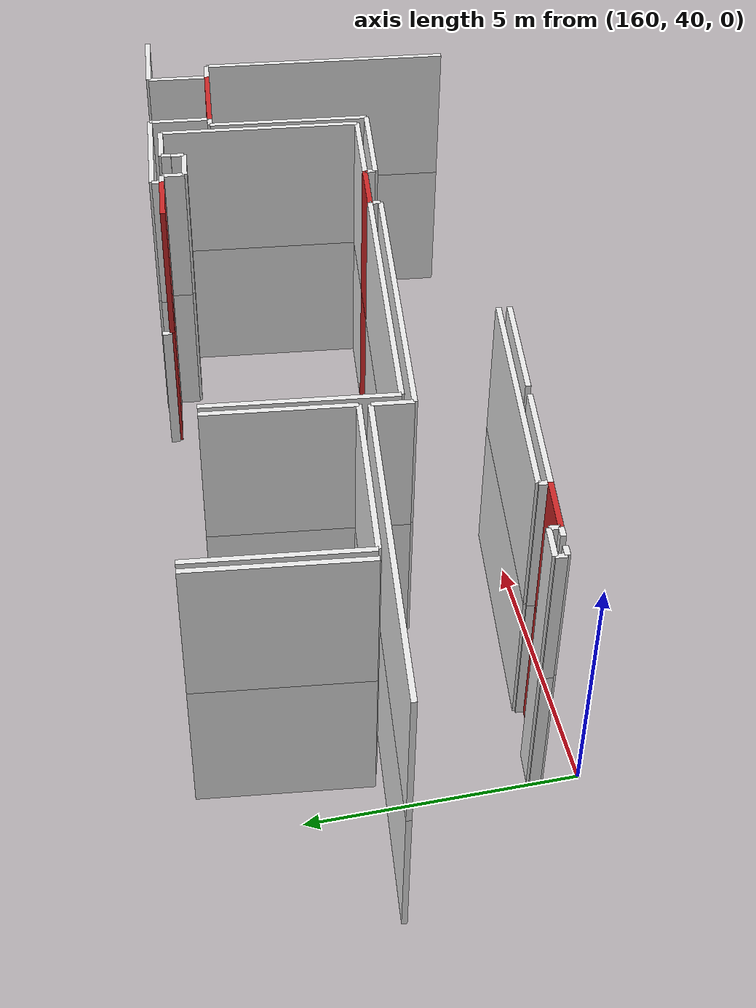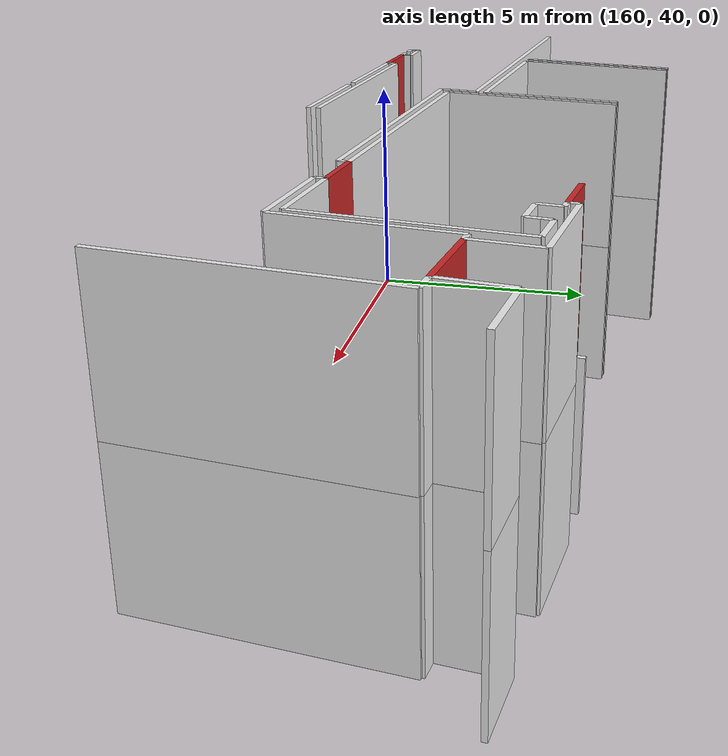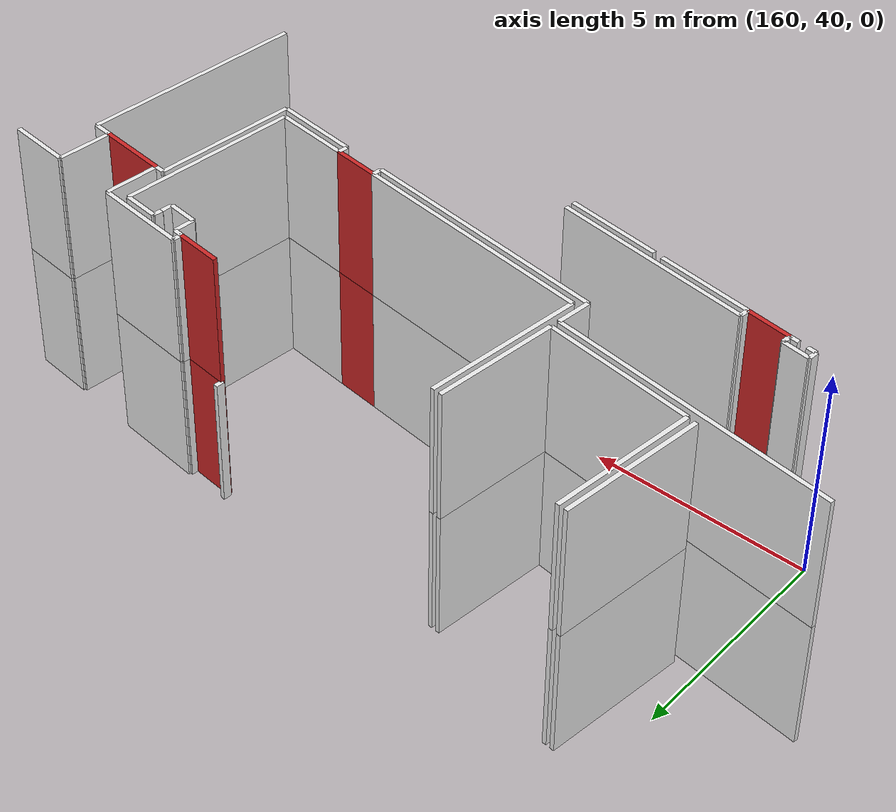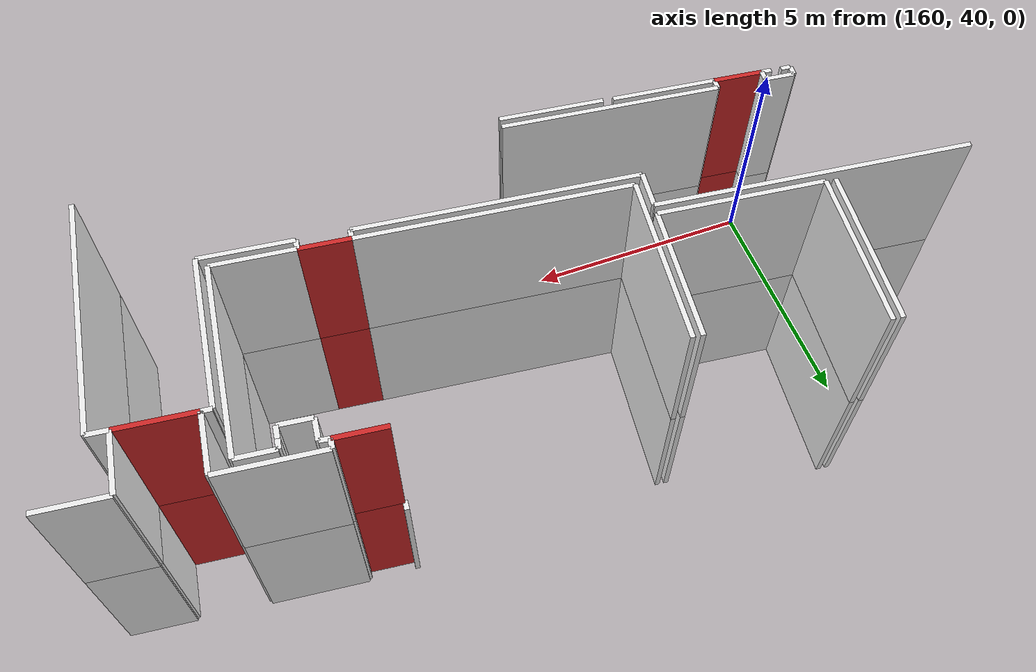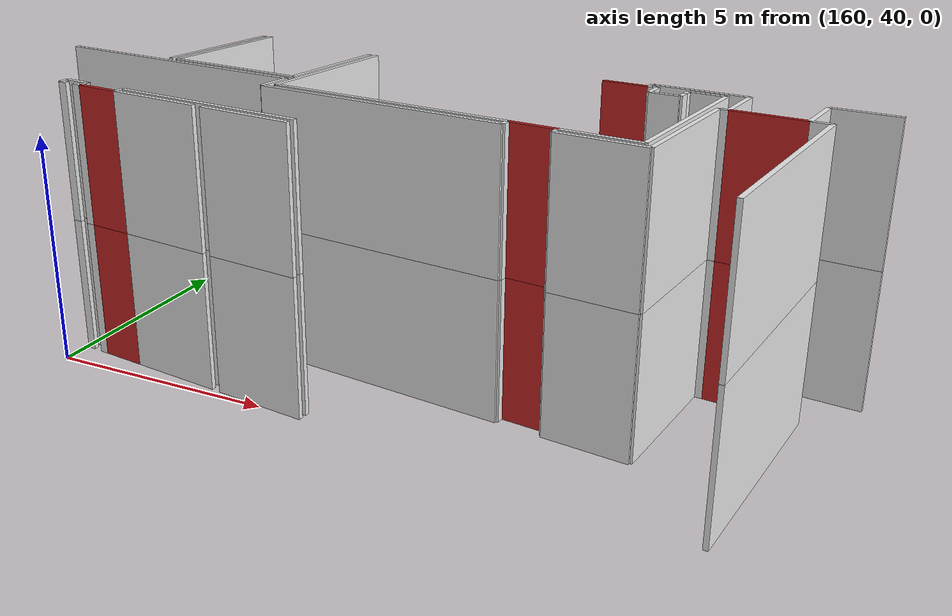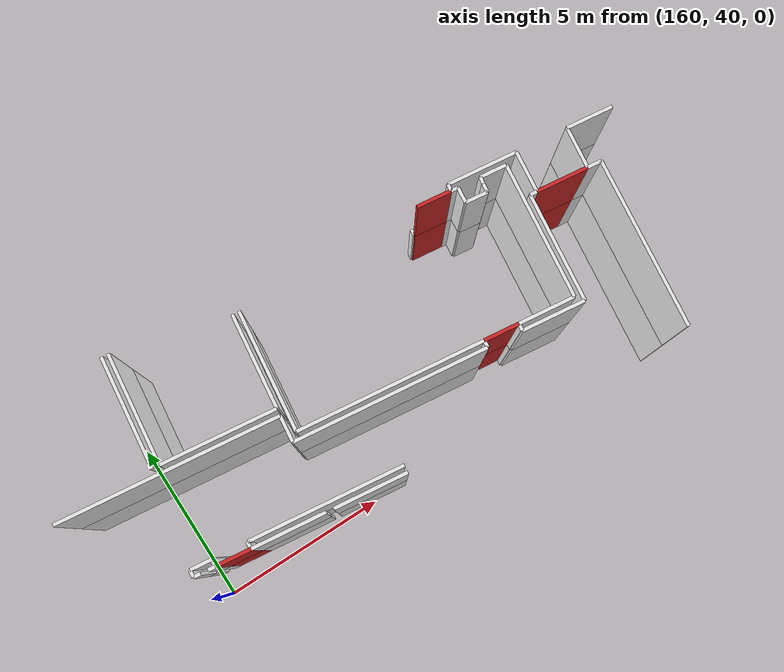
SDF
<sdf version="1.6">
 <world name="default">
  <model name="wall_161.1_40.6_1.5">
   <static>true</static>
   <pose>161.1350000000093 40.56000000005588 1.5 0 0 -0.1206236686924795</pose>
   <link name="link">
    <visual name="visual">
     <geometry><box><size>0.9972462083198822 0.1 3</size></box></geometry>
     <material>
      <script><uri>file://media/materials/scripts/gazebo.material</uri><name>Gazebo/Red</name></script>
     </material>
    </visual>
    <collision name="collision"><geometry><box><size>0.9972462083198822 0.1 3</size></box></geometry></collision>
   </link>
  </model>
  <model name="wall_170.5_45.6_1.5">
   <static>true</static>
   <pose>170.48499999998603 45.609999999869615 1.5 0 0 -0.1206236686924795</pose>
   <link name="link">
    <visual name="visual">
     <geometry><box><size>0.9972462083198822 0.1 3</size></box></geometry>
     <material>
      <script><uri>file://media/materials/scripts/gazebo.material</uri><name>Gazebo/Red</name></script>
     </material>
    </visual>
    <collision name="collision"><geometry><box><size>0.9972462083198822 0.1 3</size></box></geometry></collision>
   </link>
  </model>
  <model name="wall_173.6_44.2_1.5">
   <static>true</static>
   <pose>173.6149999999907 44.21999999997206 1.5 0 0 -0.12022278677294355</pose>
   <link name="link">
    <visual name="visual">
     <geometry><box><size>1.5008331019912227 0.1 3</size></box></geometry>
     <material>
      <script><uri>file://media/materials/scripts/gazebo.material</uri><name>Gazebo/Red</name></script>
     </material>
    </visual>
    <collision name="collision"><geometry><box><size>1.5008331019912227 0.1 3</size></box></geometry></collision>
   </link>
  </model>
  <model name="wall_170.0_41.7_1.5">
   <static>true</static>
   <pose>170.0100000000093 41.68999999994412 1.5 0 0 -0.11942892612851068</pose>
   <link name="link">
    <visual name="visual">
     <geometry><box><size>1.0071742649744493 0.1 3</size></box></geometry>
     <material>
      <script><uri>file://media/materials/scripts/gazebo.material</uri><name>Gazebo/Red</name></script>
     </material>
    </visual>
    <collision name="collision"><geometry><box><size>1.0071742649744493 0.1 3</size></box></geometry></collision>
   </link>
  </model>
  <model name="wall_161.1_40.6_4.5">
   <static>true</static>
   <pose>161.1350000000093 40.56000000005588 4.5 0 0 -0.1206236686924795</pose>
   <link name="link">
    <visual name="visual">
     <geometry><box><size>0.9972462083198822 0.1 3</size></box></geometry>
     <material>
      <script><uri>file://media/materials/scripts/gazebo.material</uri><name>Gazebo/Red</name></script>
     </material>
    </visual>
    <collision name="collision"><geometry><box><size>0.9972462083198822 0.1 3</size></box></geometry></collision>
   </link>
  </model>
  <model name="wall_170.5_45.6_4.5">
   <static>true</static>
   <pose>170.48499999998603 45.609999999869615 4.5 0 0 -0.1206236686924795</pose>
   <link name="link">
    <visual name="visual">
     <geometry><box><size>0.9972462083198822 0.1 3</size></box></geometry>
     <material>
      <script><uri>file://media/materials/scripts/gazebo.material</uri><name>Gazebo/Red</name></script>
     </material>
    </visual>
    <collision name="collision"><geometry><box><size>0.9972462083198822 0.1 3</size></box></geometry></collision>
   </link>
  </model>
  <model name="wall_173.6_44.2_4.5">
   <static>true</static>
   <pose>173.6149999999907 44.21999999997206 4.5 0 0 -0.12022278677294355</pose>
   <link name="link">
    <visual name="visual">
     <geometry><box><size>1.5008331019912227 0.1 3</size></box></geometry>
     <material>
      <script><uri>file://media/materials/scripts/gazebo.material</uri><name>Gazebo/Red</name></script>
     </material>
    </visual>
    <collision name="collision"><geometry><box><size>1.5008331019912227 0.1 3</size></box></geometry></collision>
   </link>
  </model>
  <model name="wall_170.0_41.7_4.5">
   <static>true</static>
   <pose>170.0100000000093 41.68999999994412 4.5 0 0 -0.11942892612851068</pose>
   <link name="link">
    <visual name="visual">
     <geometry><box><size>1.0071742649744493 0.1 3</size></box></geometry>
     <material>
      <script><uri>file://media/materials/scripts/gazebo.material</uri><name>Gazebo/Red</name></script>
     </material>
    </visual>
    <collision name="collision"><geometry><box><size>1.0071742649744493 0.1 3</size></box></geometry></collision>
   </link>
  </model>
  <model name="wall_165.0_40.1_1.5">
   <static>true</static>
   <pose>164.9649999999965 40.09500000020489 1.5 0 0 -0.11905156754423915</pose>
   <link name="link">
    <visual name="visual">
     <geometry><box><size>2.1048990474859015 0.1 3</size></box></geometry>
     <material>
      <script><uri>file://media/materials/scripts/gazebo.material</uri><name>Gazebo/White</name></script>
     </material>
    </visual>
    <collision name="collision"><geometry><box><size>2.1048990474859015 0.1 3</size></box></geometry></collision>
   </link>
  </model>
  <model name="wall_162.7_40.4_1.5">
   <static>true</static>
   <pose>162.67499999998836 40.375 1.5 0 0 3.0225410860422697</pose>
   <link name="link">
    <visual name="visual">
     <geometry><box><size>2.104899047428106 0.1 3</size></box></geometry>
     <material>
      <script><uri>file://media/materials/scripts/gazebo.material</uri><name>Gazebo/White</name></script>
     </material>
    </visual>
    <collision name="collision"><geometry><box><size>2.104899047428106 0.1 3</size></box></geometry></collision>
   </link>
  </model>
  <model name="wall_160.5_40.6_1.5">
   <static>true</static>
   <pose>160.54000000000815 40.63000000012107 1.5 0 0 3.0419240010121844</pose>
   <link name="link">
    <visual name="visual">
     <geometry><box><size>0.20099751243585498 0.1 3</size></box></geometry>
     <material>
      <script><uri>file://media/materials/scripts/gazebo.material</uri><name>Gazebo/White</name></script>
     </material>
    </visual>
    <collision name="collision"><geometry><box><size>0.20099751243585498 0.1 3</size></box></geometry></collision>
   </link>
  </model>
  <model name="wall_175.2_45.2_1.5">
   <static>true</static>
   <pose>175.17999999999302 45.23999999999069 1.5 0 0 3.0227523092521484</pose>
   <link name="link">
    <visual name="visual">
     <geometry><box><size>1.3495184325570784 0.1 3</size></box></geometry>
     <material>
      <script><uri>file://media/materials/scripts/gazebo.material</uri><name>Gazebo/White</name></script>
     </material>
    </visual>
    <collision name="collision"><geometry><box><size>1.3495184325570784 0.1 3</size></box></geometry></collision>
   </link>
  </model>
  <model name="wall_174.4_44.7_1.5">
   <static>true</static>
   <pose>174.43499999999767 44.7249999998603 1.5 0 0 -1.696185447161499</pose>
   <link name="link">
    <visual name="visual">
     <geometry><box><size>1.1994165247627664 0.1 3</size></box></geometry>
     <material>
      <script><uri>file://media/materials/scripts/gazebo.material</uri><name>Gazebo/White</name></script>
     </material>
    </visual>
    <collision name="collision"><geometry><box><size>1.1994165247627664 0.1 3</size></box></geometry></collision>
   </link>
  </model>
  <model name="wall_172.9_44.9_1.5">
   <static>true</static>
   <pose>172.94000000000233 44.90500000002794 1.5 0 0 1.4536875822110042</pose>
   <link name="link">
    <visual name="visual">
     <geometry><box><size>1.198206993749794 0.1 3</size></box></geometry>
     <material>
      <script><uri>file://media/materials/scripts/gazebo.material</uri><name>Gazebo/White</name></script>
     </material>
    </visual>
    <collision name="collision"><geometry><box><size>1.198206993749794 0.1 3</size></box></geometry></collision>
   </link>
  </model>
  <model name="wall_172.0_45.6_1.5">
   <static>true</static>
   <pose>172.0100000000093 45.62000000011176 1.5 0 0 3.0221637274612827</pose>
   <link name="link">
    <visual name="visual">
     <geometry><box><size>2.0143485299488986 0.1 3</size></box></geometry>
     <material>
      <script><uri>file://media/materials/scripts/gazebo.material</uri><name>Gazebo/White</name></script>
     </material>
    </visual>
    <collision name="collision"><geometry><box><size>2.0143485299488986 0.1 3</size></box></geometry></collision>
   </link>
  </model>
  <model name="wall_171.0_45.6_1.5">
   <static>true</static>
   <pose>170.99499999999534 45.64500000001863 1.5 0 0 -1.7273982035881303</pose>
   <link name="link">
    <visual name="visual">
     <geometry><box><size>0.1923538410258384 0.1 3</size></box></geometry>
     <material>
      <script><uri>file://media/materials/scripts/gazebo.material</uri><name>Gazebo/White</name></script>
     </material>
    </visual>
    <collision name="collision"><geometry><box><size>0.1923538410258384 0.1 3</size></box></geometry></collision>
   </link>
  </model>
  <model name="wall_170.0_45.8_1.5">
   <static>true</static>
   <pose>170.0 45.764999999897555 1.5 0 0 1.4659193879370842</pose>
   <link name="link">
    <visual name="visual">
     <geometry><box><size>0.19104973169180559 0.1 3</size></box></geometry>
     <material>
      <script><uri>file://media/materials/scripts/gazebo.material</uri><name>Gazebo/White</name></script>
     </material>
    </visual>
    <collision name="collision"><geometry><box><size>0.19104973169180559 0.1 3</size></box></geometry></collision>
   </link>
  </model>
  <model name="wall_172.2_45.4_1.5">
   <static>true</static>
   <pose>172.21000000002095 45.39500000001863 1.5 0 0 -0.11787210300242888</pose>
   <link name="link">
    <visual name="visual">
     <geometry><box><size>0.7653103945376242 0.1 3</size></box></geometry>
     <material>
      <script><uri>file://media/materials/scripts/gazebo.material</uri><name>Gazebo/White</name></script>
     </material>
    </visual>
    <collision name="collision"><geometry><box><size>0.7653103945376242 0.1 3</size></box></geometry></collision>
   </link>
  </model>
  <model name="wall_172.4_43.4_1.5">
   <static>true</static>
   <pose>172.35500000001048 43.39500000001863 1.5 0 0 -1.69042694704516</pose>
   <link name="link">
    <visual name="visual">
     <geometry><box><size>3.938146772429098 0.1 3</size></box></geometry>
     <material>
      <script><uri>file://media/materials/scripts/gazebo.material</uri><name>Gazebo/White</name></script>
     </material>
    </visual>
    <collision name="collision"><geometry><box><size>3.938146772429098 0.1 3</size></box></geometry></collision>
   </link>
  </model>
  <model name="wall_171.3_41.5_1.5">
   <static>true</static>
   <pose>171.31500000000233 41.53499999991618 1.5 0 0 3.024123548711388</pose>
   <link name="link">
    <visual name="visual">
     <geometry><box><size>1.6211724152395952 0.1 3</size></box></geometry>
     <material>
      <script><uri>file://media/materials/scripts/gazebo.material</uri><name>Gazebo/White</name></script>
     </material>
    </visual>
    <collision name="collision"><geometry><box><size>1.6211724152395952 0.1 3</size></box></geometry></collision>
   </link>
  </model>
  <model name="wall_166.8_42.1_1.5">
   <static>true</static>
   <pose>166.8399999999965 42.07000000006519 1.5 0 0 3.0223114162191558</pose>
   <link name="link">
    <visual name="visual">
     <geometry><box><size>5.378215317411569 0.1 3</size></box></geometry>
     <material>
      <script><uri>file://media/materials/scripts/gazebo.material</uri><name>Gazebo/White</name></script>
     </material>
    </visual>
    <collision name="collision"><geometry><box><size>5.378215317411569 0.1 3</size></box></geometry></collision>
   </link>
  </model>
  <model name="wall_164.4_44.1_1.5">
   <static>true</static>
   <pose>164.38000000000466 44.12000000011176 1.5 0 0 1.4500000360731269</pose>
   <link name="link">
    <visual name="visual">
     <geometry><box><size>3.4853981120924216 0.1 3</size></box></geometry>
     <material>
      <script><uri>file://media/materials/scripts/gazebo.material</uri><name>Gazebo/White</name></script>
     </material>
    </visual>
    <collision name="collision"><geometry><box><size>3.4853981120924216 0.1 3</size></box></geometry></collision>
   </link>
  </model>
  <model name="wall_171.1_45.5_1.5">
   <static>true</static>
   <pose>171.0799999999872 45.53499999991618 1.5 0 0 -0.14888994659904642</pose>
   <link name="link">
    <visual name="visual">
     <geometry><box><size>0.20223748414268597 0.1 3</size></box></geometry>
     <material>
      <script><uri>file://media/materials/scripts/gazebo.material</uri><name>Gazebo/White</name></script>
     </material>
    </visual>
    <collision name="collision"><geometry><box><size>0.20223748414268597 0.1 3</size></box></geometry></collision>
   </link>
  </model>
  <model name="wall_171.2_45.3_1.5">
   <static>true</static>
   <pose>171.15499999999884 45.300000000046566 1.5 0 0 -1.6839473083735081</pose>
   <link name="link">
    <visual name="visual">
     <geometry><box><size>0.4428317964528541 0.1 3</size></box></geometry>
     <material>
      <script><uri>file://media/materials/scripts/gazebo.material</uri><name>Gazebo/White</name></script>
     </material>
    </visual>
    <collision name="collision"><geometry><box><size>0.4428317964528541 0.1 3</size></box></geometry></collision>
   </link>
  </model>
  <model name="wall_171.5_45.0_1.5">
   <static>true</static>
   <pose>171.45000000001164 45.04000000003725 1.5 0 0 -0.12435499465869924</pose>
   <link name="link">
    <visual name="visual">
     <geometry><box><size>0.6449806198869872 0.1 3</size></box></geometry>
     <material>
      <script><uri>file://media/materials/scripts/gazebo.material</uri><name>Gazebo/White</name></script>
     </material>
    </visual>
    <collision name="collision"><geometry><box><size>0.6449806198869872 0.1 3</size></box></geometry></collision>
   </link>
  </model>
  <model name="wall_171.8_45.1_1.5">
   <static>true</static>
   <pose>171.7850000000035 45.125 1.5 0 0 1.4513674008959114</pose>
   <link name="link">
    <visual name="visual">
     <geometry><box><size>0.25179356623667715 0.1 3</size></box></geometry>
     <material>
      <script><uri>file://media/materials/scripts/gazebo.material</uri><name>Gazebo/White</name></script>
     </material>
    </visual>
    <collision name="collision"><geometry><box><size>0.25179356623667715 0.1 3</size></box></geometry></collision>
   </link>
  </model>
  <model name="wall_171.8_45.3_1.5">
   <static>true</static>
   <pose>171.81500000000233 45.34499999997206 1.5 0 0 1.4141944496240997</pose>
   <link name="link">
    <visual name="visual">
     <geometry><box><size>0.19235384056587543 0.1 3</size></box></geometry>
     <material>
      <script><uri>file://media/materials/scripts/gazebo.material</uri><name>Gazebo/White</name></script>
     </material>
    </visual>
    <collision name="collision"><geometry><box><size>0.19235384056587543 0.1 3</size></box></geometry></collision>
   </link>
  </model>
  <model name="wall_160.8_45.2_1.5">
   <static>true</static>
   <pose>160.77499999999418 45.16500000003725 1.5 0 0 -1.6932095761983161</pose>
   <link name="link">
    <visual name="visual">
     <geometry><box><size>3.193900436690713 0.1 3</size></box></geometry>
     <material>
      <script><uri>file://media/materials/scripts/gazebo.material</uri><name>Gazebo/White</name></script>
     </material>
    </visual>
    <collision name="collision"><geometry><box><size>3.193900436690713 0.1 3</size></box></geometry></collision>
   </link>
  </model>
  <model name="wall_161.0_45.1_1.5">
   <static>true</static>
   <pose>160.97000000000116 45.14500000001863 1.5 0 0 1.4514917943710839</pose>
   <link name="link">
    <visual name="visual">
     <geometry><box><size>3.1926947864596977 0.1 3</size></box></geometry>
     <material>
      <script><uri>file://media/materials/scripts/gazebo.material</uri><name>Gazebo/White</name></script>
     </material>
    </visual>
    <collision name="collision"><geometry><box><size>3.1926947864596977 0.1 3</size></box></geometry></collision>
   </link>
  </model>
  <model name="wall_164.2_44.5_1.5">
   <static>true</static>
   <pose>164.23500000001513 44.515000000130385 1.5 0 0 -1.6919709595141523</pose>
   <link name="link">
    <visual name="visual">
     <geometry><box><size>2.73001831492187 0.1 3</size></box></geometry>
     <material>
      <script><uri>file://media/materials/scripts/gazebo.material</uri><name>Gazebo/White</name></script>
     </material>
    </visual>
    <collision name="collision"><geometry><box><size>2.73001831492187 0.1 3</size></box></geometry></collision>
   </link>
  </model>
  <model name="wall_162.4_43.4_1.5">
   <static>true</static>
   <pose>162.42500000001746 43.360000000102445 1.5 0 0 3.0206059098054316</pose>
   <link name="link">
    <visual name="visual">
     <geometry><box><size>3.3142269083132514 0.1 3</size></box></geometry>
     <material>
      <script><uri>file://media/materials/scripts/gazebo.material</uri><name>Gazebo/White</name></script>
     </material>
    </visual>
    <collision name="collision"><geometry><box><size>3.3142269083132514 0.1 3</size></box></geometry></collision>
   </link>
  </model>
  <model name="wall_160.1_40.7_1.5">
   <static>true</static>
   <pose>160.13999999998487 40.67999999993481 1.5 0 0 -0.09966865257760905</pose>
   <link name="link">
    <visual name="visual">
     <geometry><box><size>0.20099751243585498 0.1 3</size></box></geometry>
     <material>
      <script><uri>file://media/materials/scripts/gazebo.material</uri><name>Gazebo/White</name></script>
     </material>
    </visual>
    <collision name="collision"><geometry><box><size>0.20099751243585498 0.1 3</size></box></geometry></collision>
   </link>
  </model>
  <model name="wall_166.7_41.9_1.5">
   <static>true</static>
   <pose>166.72000000000116 41.87999999988824 1.5 0 0 -0.11857471213006499</pose>
   <link name="link">
    <visual name="visual">
     <geometry><box><size>5.579175566332764 0.1 3</size></box></geometry>
     <material>
      <script><uri>file://media/materials/scripts/gazebo.material</uri><name>Gazebo/White</name></script>
     </material>
    </visual>
    <collision name="collision"><geometry><box><size>5.579175566332764 0.1 3</size></box></geometry></collision>
   </link>
  </model>
  <model name="wall_169.5_41.6_1.5">
   <static>true</static>
   <pose>169.5 41.64999999990687 1.5 0 0 1.4711276743037347</pose>
   <link name="link">
    <visual name="visual">
     <geometry><box><size>0.20099751260961132 0.1 3</size></box></geometry>
     <material>
      <script><uri>file://media/materials/scripts/gazebo.material</uri><name>Gazebo/White</name></script>
     </material>
    </visual>
    <collision name="collision"><geometry><box><size>0.20099751260961132 0.1 3</size></box></geometry></collision>
   </link>
  </model>
  <model name="wall_170.5_41.5_1.5">
   <static>true</static>
   <pose>170.49499999999534 41.53000000002794 1.5 0 0 -1.7196862747459547</pose>
   <link name="link">
    <visual name="visual">
     <geometry><box><size>0.2022374838894058 0.1 3</size></box></geometry>
     <material>
      <script><uri>file://media/materials/scripts/gazebo.material</uri><name>Gazebo/White</name></script>
     </material>
    </visual>
    <collision name="collision"><geometry><box><size>0.2022374838894058 0.1 3</size></box></geometry></collision>
   </link>
  </model>
  <model name="wall_171.4_41.3_1.5">
   <static>true</static>
   <pose>171.3849999999802 41.32000000006519 1.5 0 0 -0.1209536472312257</pose>
   <link name="link">
    <visual name="visual">
     <geometry><box><size>1.823321145624578 0.1 3</size></box></geometry>
     <material>
      <script><uri>file://media/materials/scripts/gazebo.material</uri><name>Gazebo/White</name></script>
     </material>
    </visual>
    <collision name="collision"><geometry><box><size>1.823321145624578 0.1 3</size></box></geometry></collision>
   </link>
  </model>
  <model name="wall_172.5_42.8_1.5">
   <static>true</static>
   <pose>172.47999999998137 42.77000000001863 1.5 0 0 1.4495983856926966</pose>
   <link name="link">
    <visual name="visual">
     <geometry><box><size>3.1430558379864832 0.1 3</size></box></geometry>
     <material>
      <script><uri>file://media/materials/scripts/gazebo.material</uri><name>Gazebo/White</name></script>
     </material>
    </visual>
    <collision name="collision"><geometry><box><size>3.1430558379864832 0.1 3</size></box></geometry></collision>
   </link>
  </model>
  <model name="wall_172.8_44.3_1.5">
   <static>true</static>
   <pose>172.76999999998952 44.32000000006519 1.5 0 0 -0.09966865257760905</pose>
   <link name="link">
    <visual name="visual">
     <geometry><box><size>0.20099751243585498 0.1 3</size></box></geometry>
     <material>
      <script><uri>file://media/materials/scripts/gazebo.material</uri><name>Gazebo/White</name></script>
     </material>
    </visual>
    <collision name="collision"><geometry><box><size>0.20099751243585498 0.1 3</size></box></geometry></collision>
   </link>
  </model>
  <model name="wall_174.6_44.1_1.5">
   <static>true</static>
   <pose>174.55999999999767 44.10499999998137 1.5 0 0 -0.12435499408110015</pose>
   <link name="link">
    <visual name="visual">
     <geometry><box><size>0.4031128874149275 0.1 3</size></box></geometry>
     <material>
      <script><uri>file://media/materials/scripts/gazebo.material</uri><name>Gazebo/White</name></script>
     </material>
    </visual>
    <collision name="collision"><geometry><box><size>0.4031128874149275 0.1 3</size></box></geometry></collision>
   </link>
  </model>
  <model name="wall_174.5_41.6_1.5">
   <static>true</static>
   <pose>174.4649999999965 41.63500000000931 1.5 0 0 -1.690870309974588</pose>
   <link name="link">
    <visual name="visual">
     <geometry><box><size>4.925464445238173 0.1 3</size></box></geometry>
     <material>
      <script><uri>file://media/materials/scripts/gazebo.material</uri><name>Gazebo/White</name></script>
     </material>
    </visual>
    <collision name="collision"><geometry><box><size>4.925464445238173 0.1 3</size></box></geometry></collision>
   </link>
  </model>
  <model name="wall_163.8_40.4_1.5">
   <static>true</static>
   <pose>163.8400000000256 40.43500000005588 1.5 0 0 3.0211735397007757</pose>
   <link name="link">
    <visual name="visual">
     <geometry><box><size>4.41194968243261 0.1 3</size></box></geometry>
     <material>
      <script><uri>file://media/materials/scripts/gazebo.material</uri><name>Gazebo/White</name></script>
     </material>
    </visual>
    <collision name="collision"><geometry><box><size>4.41194968243261 0.1 3</size></box></geometry></collision>
   </link>
  </model>
  <model name="wall_161.6_40.6_1.5">
   <static>true</static>
   <pose>161.64000000001397 40.60000000009313 1.5 0 0 -1.6704649792860586</pose>
   <link name="link">
    <visual name="visual">
     <geometry><box><size>0.20099751260961132 0.1 3</size></box></geometry>
     <material>
      <script><uri>file://media/materials/scripts/gazebo.material</uri><name>Gazebo/White</name></script>
     </material>
    </visual>
    <collision name="collision"><geometry><box><size>0.20099751260961132 0.1 3</size></box></geometry></collision>
   </link>
  </model>
  <model name="wall_160.6_40.7_1.5">
   <static>true</static>
   <pose>160.64999999999418 40.71999999997206 1.5 0 0 1.471127674361366</pose>
   <link name="link">
    <visual name="visual">
     <geometry><box><size>0.20099751214046915 0.1 3</size></box></geometry>
     <material>
      <script><uri>file://media/materials/scripts/gazebo.material</uri><name>Gazebo/White</name></script>
     </material>
    </visual>
    <collision name="collision"><geometry><box><size>0.20099751214046915 0.1 3</size></box></geometry></collision>
   </link>
  </model>
  <model name="wall_160.4_40.9_1.5">
   <static>true</static>
   <pose>160.35999999998603 40.85499999998137 1.5 0 0 3.025451026215301</pose>
   <link name="link">
    <visual name="visual">
     <geometry><box><size>0.6040695324329671 0.1 3</size></box></geometry>
     <material>
      <script><uri>file://media/materials/scripts/gazebo.material</uri><name>Gazebo/White</name></script>
     </material>
    </visual>
    <collision name="collision"><geometry><box><size>0.6040695324329671 0.1 3</size></box></geometry></collision>
   </link>
  </model>
  <model name="wall_160.0_40.8_1.5">
   <static>true</static>
   <pose>160.04999999998836 40.79000000003725 1.5 0 0 -1.6704649792860586</pose>
   <link name="link">
    <visual name="visual">
     <geometry><box><size>0.20099751260961132 0.1 3</size></box></geometry>
     <material>
      <script><uri>file://media/materials/scripts/gazebo.material</uri><name>Gazebo/White</name></script>
     </material>
    </visual>
    <collision name="collision"><geometry><box><size>0.20099751260961132 0.1 3</size></box></geometry></collision>
   </link>
  </model>
  <model name="wall_160.9_43.3_1.5">
   <static>true</static>
   <pose>160.8849999999802 43.34000000008382 1.5 0 0 -0.11986634401243841</pose>
   <link name="link">
    <visual name="visual">
     <geometry><box><size>6.3556038265721595 0.1 3</size></box></geometry>
     <material>
      <script><uri>file://media/materials/scripts/gazebo.material</uri><name>Gazebo/White</name></script>
     </material>
    </visual>
    <collision name="collision"><geometry><box><size>6.3556038265721595 0.1 3</size></box></geometry></collision>
   </link>
  </model>
  <model name="wall_164.0_42.6_1.5">
   <static>true</static>
   <pose>163.99499999999534 42.58499999996275 1.5 0 0 -1.6902252527703903</pose>
   <link name="link">
    <visual name="visual">
     <geometry><box><size>0.7553806987169667 0.1 3</size></box></geometry>
     <material>
      <script><uri>file://media/materials/scripts/gazebo.material</uri><name>Gazebo/White</name></script>
     </material>
    </visual>
    <collision name="collision"><geometry><box><size>0.7553806987169667 0.1 3</size></box></geometry></collision>
   </link>
  </model>
  <model name="wall_165.0_40.1_4.5">
   <static>true</static>
   <pose>164.9649999999965 40.09500000020489 4.5 0 0 -0.11905156754423915</pose>
   <link name="link">
    <visual name="visual">
     <geometry><box><size>2.1048990474859015 0.1 3</size></box></geometry>
     <material>
      <script><uri>file://media/materials/scripts/gazebo.material</uri><name>Gazebo/White</name></script>
     </material>
    </visual>
    <collision name="collision"><geometry><box><size>2.1048990474859015 0.1 3</size></box></geometry></collision>
   </link>
  </model>
  <model name="wall_162.7_40.4_4.5">
   <static>true</static>
   <pose>162.67499999998836 40.375 4.5 0 0 3.0225410860422697</pose>
   <link name="link">
    <visual name="visual">
     <geometry><box><size>2.104899047428106 0.1 3</size></box></geometry>
     <material>
      <script><uri>file://media/materials/scripts/gazebo.material</uri><name>Gazebo/White</name></script>
     </material>
    </visual>
    <collision name="collision"><geometry><box><size>2.104899047428106 0.1 3</size></box></geometry></collision>
   </link>
  </model>
  <model name="wall_160.5_40.6_4.5">
   <static>true</static>
   <pose>160.54000000000815 40.63000000012107 4.5 0 0 3.0419240010121844</pose>
   <link name="link">
    <visual name="visual">
     <geometry><box><size>0.20099751243585498 0.1 3</size></box></geometry>
     <material>
      <script><uri>file://media/materials/scripts/gazebo.material</uri><name>Gazebo/White</name></script>
     </material>
    </visual>
    <collision name="collision"><geometry><box><size>0.20099751243585498 0.1 3</size></box></geometry></collision>
   </link>
  </model>
  <model name="wall_175.2_45.2_4.5">
   <static>true</static>
   <pose>175.17999999999302 45.23999999999069 4.5 0 0 3.0227523092521484</pose>
   <link name="link">
    <visual name="visual">
     <geometry><box><size>1.3495184325570784 0.1 3</size></box></geometry>
     <material>
      <script><uri>file://media/materials/scripts/gazebo.material</uri><name>Gazebo/White</name></script>
     </material>
    </visual>
    <collision name="collision"><geometry><box><size>1.3495184325570784 0.1 3</size></box></geometry></collision>
   </link>
  </model>
  <model name="wall_174.4_44.7_4.5">
   <static>true</static>
   <pose>174.43499999999767 44.7249999998603 4.5 0 0 -1.696185447161499</pose>
   <link name="link">
    <visual name="visual">
     <geometry><box><size>1.1994165247627664 0.1 3</size></box></geometry>
     <material>
      <script><uri>file://media/materials/scripts/gazebo.material</uri><name>Gazebo/White</name></script>
     </material>
    </visual>
    <collision name="collision"><geometry><box><size>1.1994165247627664 0.1 3</size></box></geometry></collision>
   </link>
  </model>
  <model name="wall_172.9_44.9_4.5">
   <static>true</static>
   <pose>172.94000000000233 44.90500000002794 4.5 0 0 1.4536875822110042</pose>
   <link name="link">
    <visual name="visual">
     <geometry><box><size>1.198206993749794 0.1 3</size></box></geometry>
     <material>
      <script><uri>file://media/materials/scripts/gazebo.material</uri><name>Gazebo/White</name></script>
     </material>
    </visual>
    <collision name="collision"><geometry><box><size>1.198206993749794 0.1 3</size></box></geometry></collision>
   </link>
  </model>
  <model name="wall_172.0_45.6_4.5">
   <static>true</static>
   <pose>172.0100000000093 45.62000000011176 4.5 0 0 3.0221637274612827</pose>
   <link name="link">
    <visual name="visual">
     <geometry><box><size>2.0143485299488986 0.1 3</size></box></geometry>
     <material>
      <script><uri>file://media/materials/scripts/gazebo.material</uri><name>Gazebo/White</name></script>
     </material>
    </visual>
    <collision name="collision"><geometry><box><size>2.0143485299488986 0.1 3</size></box></geometry></collision>
   </link>
  </model>
  <model name="wall_171.0_45.6_4.5">
   <static>true</static>
   <pose>170.99499999999534 45.64500000001863 4.5 0 0 -1.7273982035881303</pose>
   <link name="link">
    <visual name="visual">
     <geometry><box><size>0.1923538410258384 0.1 3</size></box></geometry>
     <material>
      <script><uri>file://media/materials/scripts/gazebo.material</uri><name>Gazebo/White</name></script>
     </material>
    </visual>
    <collision name="collision"><geometry><box><size>0.1923538410258384 0.1 3</size></box></geometry></collision>
   </link>
  </model>
  <model name="wall_172.2_45.4_4.5">
   <static>true</static>
   <pose>172.21000000002095 45.39500000001863 4.5 0 0 -0.11787210300242888</pose>
   <link name="link">
    <visual name="visual">
     <geometry><box><size>0.7653103945376242 0.1 3</size></box></geometry>
     <material>
      <script><uri>file://media/materials/scripts/gazebo.material</uri><name>Gazebo/White</name></script>
     </material>
    </visual>
    <collision name="collision"><geometry><box><size>0.7653103945376242 0.1 3</size></box></geometry></collision>
   </link>
  </model>
  <model name="wall_172.4_43.4_4.5">
   <static>true</static>
   <pose>172.35500000001048 43.39500000001863 4.5 0 0 -1.69042694704516</pose>
   <link name="link">
    <visual name="visual">
     <geometry><box><size>3.938146772429098 0.1 3</size></box></geometry>
     <material>
      <script><uri>file://media/materials/scripts/gazebo.material</uri><name>Gazebo/White</name></script>
     </material>
    </visual>
    <collision name="collision"><geometry><box><size>3.938146772429098 0.1 3</size></box></geometry></collision>
   </link>
  </model>
  <model name="wall_171.3_41.5_4.5">
   <static>true</static>
   <pose>171.31500000000233 41.53499999991618 4.5 0 0 3.024123548711388</pose>
   <link name="link">
    <visual name="visual">
     <geometry><box><size>1.6211724152395952 0.1 3</size></box></geometry>
     <material>
      <script><uri>file://media/materials/scripts/gazebo.material</uri><name>Gazebo/White</name></script>
     </material>
    </visual>
    <collision name="collision"><geometry><box><size>1.6211724152395952 0.1 3</size></box></geometry></collision>
   </link>
  </model>
  <model name="wall_166.8_42.1_4.5">
   <static>true</static>
   <pose>166.8399999999965 42.07000000006519 4.5 0 0 3.0223114162191558</pose>
   <link name="link">
    <visual name="visual">
     <geometry><box><size>5.378215317411569 0.1 3</size></box></geometry>
     <material>
      <script><uri>file://media/materials/scripts/gazebo.material</uri><name>Gazebo/White</name></script>
     </material>
    </visual>
    <collision name="collision"><geometry><box><size>5.378215317411569 0.1 3</size></box></geometry></collision>
   </link>
  </model>
  <model name="wall_164.4_44.1_4.5">
   <static>true</static>
   <pose>164.38000000000466 44.12000000011176 4.5 0 0 1.4500000360731269</pose>
   <link name="link">
    <visual name="visual">
     <geometry><box><size>3.4853981120924216 0.1 3</size></box></geometry>
     <material>
      <script><uri>file://media/materials/scripts/gazebo.material</uri><name>Gazebo/White</name></script>
     </material>
    </visual>
    <collision name="collision"><geometry><box><size>3.4853981120924216 0.1 3</size></box></geometry></collision>
   </link>
  </model>
  <model name="wall_171.1_45.5_4.5">
   <static>true</static>
   <pose>171.0799999999872 45.53499999991618 4.5 0 0 -0.14888994659904642</pose>
   <link name="link">
    <visual name="visual">
     <geometry><box><size>0.20223748414268597 0.1 3</size></box></geometry>
     <material>
      <script><uri>file://media/materials/scripts/gazebo.material</uri><name>Gazebo/White</name></script>
     </material>
    </visual>
    <collision name="collision"><geometry><box><size>0.20223748414268597 0.1 3</size></box></geometry></collision>
   </link>
  </model>
  <model name="wall_171.2_45.3_4.5">
   <static>true</static>
   <pose>171.15499999999884 45.300000000046566 4.5 0 0 -1.6839473083735081</pose>
   <link name="link">
    <visual name="visual">
     <geometry><box><size>0.4428317964528541 0.1 3</size></box></geometry>
     <material>
      <script><uri>file://media/materials/scripts/gazebo.material</uri><name>Gazebo/White</name></script>
     </material>
    </visual>
    <collision name="collision"><geometry><box><size>0.4428317964528541 0.1 3</size></box></geometry></collision>
   </link>
  </model>
  <model name="wall_171.5_45.0_4.5">
   <static>true</static>
   <pose>171.45000000001164 45.04000000003725 4.5 0 0 -0.12435499465869924</pose>
   <link name="link">
    <visual name="visual">
     <geometry><box><size>0.6449806198869872 0.1 3</size></box></geometry>
     <material>
      <script><uri>file://media/materials/scripts/gazebo.material</uri><name>Gazebo/White</name></script>
     </material>
    </visual>
    <collision name="collision"><geometry><box><size>0.6449806198869872 0.1 3</size></box></geometry></collision>
   </link>
  </model>
  <model name="wall_171.8_45.1_4.5">
   <static>true</static>
   <pose>171.7850000000035 45.125 4.5 0 0 1.4513674008959114</pose>
   <link name="link">
    <visual name="visual">
     <geometry><box><size>0.25179356623667715 0.1 3</size></box></geometry>
     <material>
      <script><uri>file://media/materials/scripts/gazebo.material</uri><name>Gazebo/White</name></script>
     </material>
    </visual>
    <collision name="collision"><geometry><box><size>0.25179356623667715 0.1 3</size></box></geometry></collision>
   </link>
  </model>
  <model name="wall_171.8_45.3_4.5">
   <static>true</static>
   <pose>171.81500000000233 45.34499999997206 4.5 0 0 1.4141944496240997</pose>
   <link name="link">
    <visual name="visual">
     <geometry><box><size>0.19235384056587543 0.1 3</size></box></geometry>
     <material>
      <script><uri>file://media/materials/scripts/gazebo.material</uri><name>Gazebo/White</name></script>
     </material>
    </visual>
    <collision name="collision"><geometry><box><size>0.19235384056587543 0.1 3</size></box></geometry></collision>
   </link>
  </model>
  <model name="wall_160.8_45.2_4.5">
   <static>true</static>
   <pose>160.77499999999418 45.16500000003725 4.5 0 0 -1.6932095761983161</pose>
   <link name="link">
    <visual name="visual">
     <geometry><box><size>3.193900436690713 0.1 3</size></box></geometry>
     <material>
      <script><uri>file://media/materials/scripts/gazebo.material</uri><name>Gazebo/White</name></script>
     </material>
    </visual>
    <collision name="collision"><geometry><box><size>3.193900436690713 0.1 3</size></box></geometry></collision>
   </link>
  </model>
  <model name="wall_161.0_45.1_4.5">
   <static>true</static>
   <pose>160.97000000000116 45.14500000001863 4.5 0 0 1.4514917943710839</pose>
   <link name="link">
    <visual name="visual">
     <geometry><box><size>3.1926947864596977 0.1 3</size></box></geometry>
     <material>
      <script><uri>file://media/materials/scripts/gazebo.material</uri><name>Gazebo/White</name></script>
     </material>
    </visual>
    <collision name="collision"><geometry><box><size>3.1926947864596977 0.1 3</size></box></geometry></collision>
   </link>
  </model>
  <model name="wall_164.2_44.5_4.5">
   <static>true</static>
   <pose>164.23500000001513 44.515000000130385 4.5 0 0 -1.6919709595141523</pose>
   <link name="link">
    <visual name="visual">
     <geometry><box><size>2.73001831492187 0.1 3</size></box></geometry>
     <material>
      <script><uri>file://media/materials/scripts/gazebo.material</uri><name>Gazebo/White</name></script>
     </material>
    </visual>
    <collision name="collision"><geometry><box><size>2.73001831492187 0.1 3</size></box></geometry></collision>
   </link>
  </model>
  <model name="wall_162.4_43.4_4.5">
   <static>true</static>
   <pose>162.42500000001746 43.360000000102445 4.5 0 0 3.0206059098054316</pose>
   <link name="link">
    <visual name="visual">
     <geometry><box><size>3.3142269083132514 0.1 3</size></box></geometry>
     <material>
      <script><uri>file://media/materials/scripts/gazebo.material</uri><name>Gazebo/White</name></script>
     </material>
    </visual>
    <collision name="collision"><geometry><box><size>3.3142269083132514 0.1 3</size></box></geometry></collision>
   </link>
  </model>
  <model name="wall_160.1_40.7_4.5">
   <static>true</static>
   <pose>160.13999999998487 40.67999999993481 4.5 0 0 -0.09966865257760905</pose>
   <link name="link">
    <visual name="visual">
     <geometry><box><size>0.20099751243585498 0.1 3</size></box></geometry>
     <material>
      <script><uri>file://media/materials/scripts/gazebo.material</uri><name>Gazebo/White</name></script>
     </material>
    </visual>
    <collision name="collision"><geometry><box><size>0.20099751243585498 0.1 3</size></box></geometry></collision>
   </link>
  </model>
  <model name="wall_166.7_41.9_4.5">
   <static>true</static>
   <pose>166.72000000000116 41.87999999988824 4.5 0 0 -0.11857471213006499</pose>
   <link name="link">
    <visual name="visual">
     <geometry><box><size>5.579175566332764 0.1 3</size></box></geometry>
     <material>
      <script><uri>file://media/materials/scripts/gazebo.material</uri><name>Gazebo/White</name></script>
     </material>
    </visual>
    <collision name="collision"><geometry><box><size>5.579175566332764 0.1 3</size></box></geometry></collision>
   </link>
  </model>
  <model name="wall_169.5_41.6_4.5">
   <static>true</static>
   <pose>169.5 41.64999999990687 4.5 0 0 1.4711276743037347</pose>
   <link name="link">
    <visual name="visual">
     <geometry><box><size>0.20099751260961132 0.1 3</size></box></geometry>
     <material>
      <script><uri>file://media/materials/scripts/gazebo.material</uri><name>Gazebo/White</name></script>
     </material>
    </visual>
    <collision name="collision"><geometry><box><size>0.20099751260961132 0.1 3</size></box></geometry></collision>
   </link>
  </model>
  <model name="wall_170.5_41.5_4.5">
   <static>true</static>
   <pose>170.49499999999534 41.53000000002794 4.5 0 0 -1.7196862747459547</pose>
   <link name="link">
    <visual name="visual">
     <geometry><box><size>0.2022374838894058 0.1 3</size></box></geometry>
     <material>
      <script><uri>file://media/materials/scripts/gazebo.material</uri><name>Gazebo/White</name></script>
     </material>
    </visual>
    <collision name="collision"><geometry><box><size>0.2022374838894058 0.1 3</size></box></geometry></collision>
   </link>
  </model>
  <model name="wall_171.4_41.3_4.5">
   <static>true</static>
   <pose>171.3849999999802 41.32000000006519 4.5 0 0 -0.1209536472312257</pose>
   <link name="link">
    <visual name="visual">
     <geometry><box><size>1.823321145624578 0.1 3</size></box></geometry>
     <material>
      <script><uri>file://media/materials/scripts/gazebo.material</uri><name>Gazebo/White</name></script>
     </material>
    </visual>
    <collision name="collision"><geometry><box><size>1.823321145624578 0.1 3</size></box></geometry></collision>
   </link>
  </model>
  <model name="wall_172.5_42.8_4.5">
   <static>true</static>
   <pose>172.47999999998137 42.77000000001863 4.5 0 0 1.4495983856926966</pose>
   <link name="link">
    <visual name="visual">
     <geometry><box><size>3.1430558379864832 0.1 3</size></box></geometry>
     <material>
      <script><uri>file://media/materials/scripts/gazebo.material</uri><name>Gazebo/White</name></script>
     </material>
    </visual>
    <collision name="collision"><geometry><box><size>3.1430558379864832 0.1 3</size></box></geometry></collision>
   </link>
  </model>
  <model name="wall_172.8_44.3_4.5">
   <static>true</static>
   <pose>172.76999999998952 44.32000000006519 4.5 0 0 -0.09966865257760905</pose>
   <link name="link">
    <visual name="visual">
     <geometry><box><size>0.20099751243585498 0.1 3</size></box></geometry>
     <material>
      <script><uri>file://media/materials/scripts/gazebo.material</uri><name>Gazebo/White</name></script>
     </material>
    </visual>
    <collision name="collision"><geometry><box><size>0.20099751243585498 0.1 3</size></box></geometry></collision>
   </link>
  </model>
  <model name="wall_174.6_44.1_4.5">
   <static>true</static>
   <pose>174.55999999999767 44.10499999998137 4.5 0 0 -0.12435499408110015</pose>
   <link name="link">
    <visual name="visual">
     <geometry><box><size>0.4031128874149275 0.1 3</size></box></geometry>
     <material>
      <script><uri>file://media/materials/scripts/gazebo.material</uri><name>Gazebo/White</name></script>
     </material>
    </visual>
    <collision name="collision"><geometry><box><size>0.4031128874149275 0.1 3</size></box></geometry></collision>
   </link>
  </model>
  <model name="wall_174.5_41.6_4.5">
   <static>true</static>
   <pose>174.4649999999965 41.63500000000931 4.5 0 0 -1.690870309974588</pose>
   <link name="link">
    <visual name="visual">
     <geometry><box><size>4.925464445238173 0.1 3</size></box></geometry>
     <material>
      <script><uri>file://media/materials/scripts/gazebo.material</uri><name>Gazebo/White</name></script>
     </material>
    </visual>
    <collision name="collision"><geometry><box><size>4.925464445238173 0.1 3</size></box></geometry></collision>
   </link>
  </model>
  <model name="wall_163.8_40.4_4.5">
   <static>true</static>
   <pose>163.8400000000256 40.43500000005588 4.5 0 0 3.0211735397007757</pose>
   <link name="link">
    <visual name="visual">
     <geometry><box><size>4.41194968243261 0.1 3</size></box></geometry>
     <material>
      <script><uri>file://media/materials/scripts/gazebo.material</uri><name>Gazebo/White</name></script>
     </material>
    </visual>
    <collision name="collision"><geometry><box><size>4.41194968243261 0.1 3</size></box></geometry></collision>
   </link>
  </model>
  <model name="wall_161.6_40.6_4.5">
   <static>true</static>
   <pose>161.64000000001397 40.60000000009313 4.5 0 0 -1.6704649792860586</pose>
   <link name="link">
    <visual name="visual">
     <geometry><box><size>0.20099751260961132 0.1 3</size></box></geometry>
     <material>
      <script><uri>file://media/materials/scripts/gazebo.material</uri><name>Gazebo/White</name></script>
     </material>
    </visual>
    <collision name="collision"><geometry><box><size>0.20099751260961132 0.1 3</size></box></geometry></collision>
   </link>
  </model>
  <model name="wall_160.6_40.7_4.5">
   <static>true</static>
   <pose>160.64999999999418 40.71999999997206 4.5 0 0 1.471127674361366</pose>
   <link name="link">
    <visual name="visual">
     <geometry><box><size>0.20099751214046915 0.1 3</size></box></geometry>
     <material>
      <script><uri>file://media/materials/scripts/gazebo.material</uri><name>Gazebo/White</name></script>
     </material>
    </visual>
    <collision name="collision"><geometry><box><size>0.20099751214046915 0.1 3</size></box></geometry></collision>
   </link>
  </model>
  <model name="wall_160.4_40.9_4.5">
   <static>true</static>
   <pose>160.35999999998603 40.85499999998137 4.5 0 0 3.025451026215301</pose>
   <link name="link">
    <visual name="visual">
     <geometry><box><size>0.6040695324329671 0.1 3</size></box></geometry>
     <material>
      <script><uri>file://media/materials/scripts/gazebo.material</uri><name>Gazebo/White</name></script>
     </material>
    </visual>
    <collision name="collision"><geometry><box><size>0.6040695324329671 0.1 3</size></box></geometry></collision>
   </link>
  </model>
  <model name="wall_160.0_40.8_4.5">
   <static>true</static>
   <pose>160.04999999998836 40.79000000003725 4.5 0 0 -1.6704649792860586</pose>
   <link name="link">
    <visual name="visual">
     <geometry><box><size>0.20099751260961132 0.1 3</size></box></geometry>
     <material>
      <script><uri>file://media/materials/scripts/gazebo.material</uri><name>Gazebo/White</name></script>
     </material>
    </visual>
    <collision name="collision"><geometry><box><size>0.20099751260961132 0.1 3</size></box></geometry></collision>
   </link>
  </model>
  <model name="wall_160.9_43.3_4.5">
   <static>true</static>
   <pose>160.8849999999802 43.34000000008382 4.5 0 0 -0.11986634401243841</pose>
   <link name="link">
    <visual name="visual">
     <geometry><box><size>6.3556038265721595 0.1 3</size></box></geometry>
     <material>
      <script><uri>file://media/materials/scripts/gazebo.material</uri><name>Gazebo/White</name></script>
     </material>
    </visual>
    <collision name="collision"><geometry><box><size>6.3556038265721595 0.1 3</size></box></geometry></collision>
   </link>
  </model>
  <model name="wall_164.0_42.6_4.5">
   <static>true</static>
   <pose>163.99499999999534 42.58499999996275 4.5 0 0 -1.6902252527703903</pose>
   <link name="link">
    <visual name="visual">
     <geometry><box><size>0.7553806987169667 0.1 3</size></box></geometry>
     <material>
      <script><uri>file://media/materials/scripts/gazebo.material</uri><name>Gazebo/White</name></script>
     </material>
    </visual>
    <collision name="collision"><geometry><box><size>0.7553806987169667 0.1 3</size></box></geometry></collision>
   </link>
  </model>
 </world>
</sdf>
